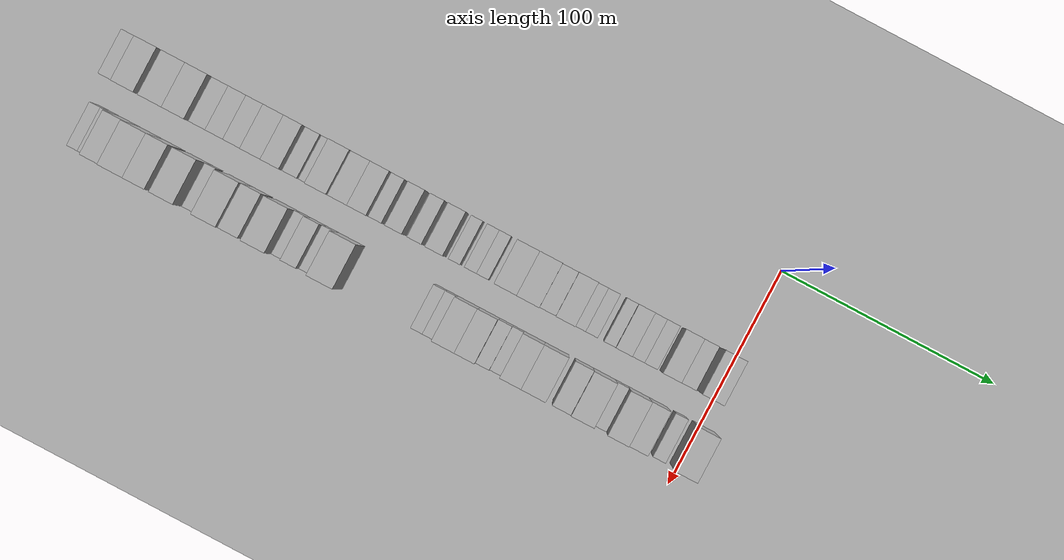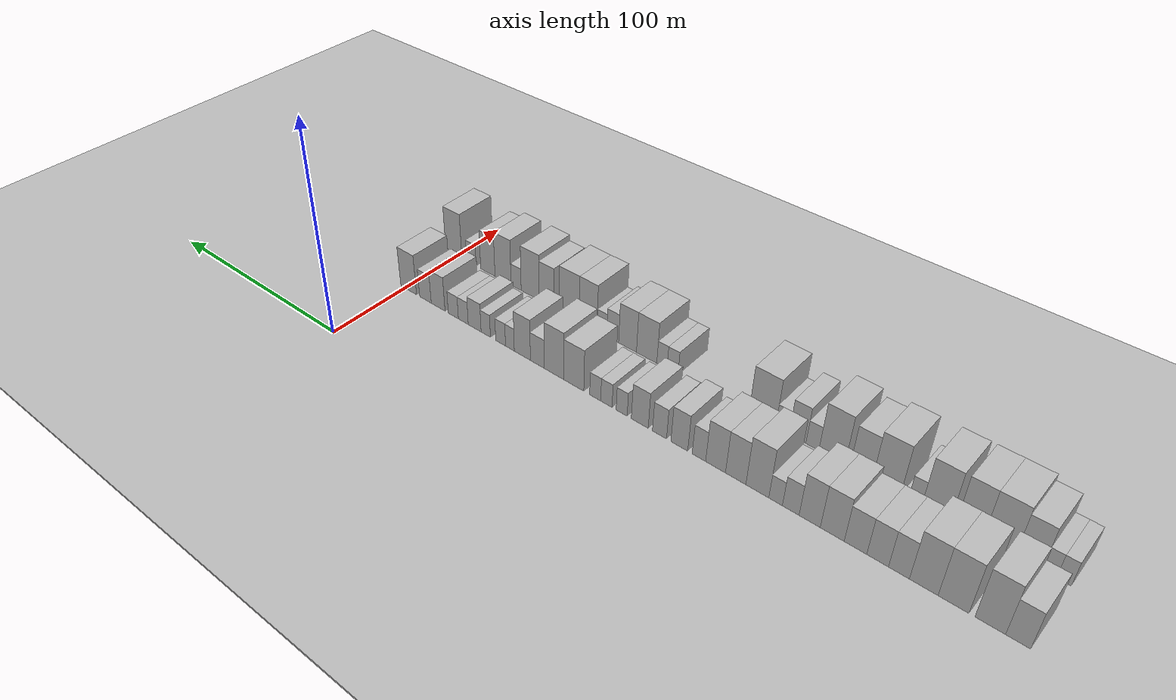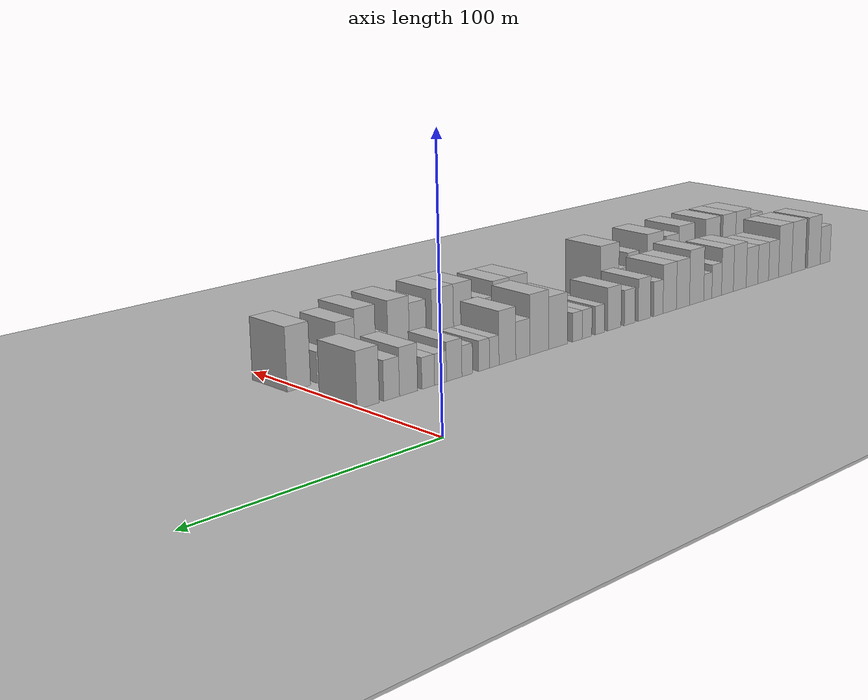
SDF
<sdf version="1.6">
 <world name="default">
  <include><name>ground_plane_1</name><uri>model://HANNAS_ground_plane</uri></include>
  <include>
   <name>ground_plane_2</name>
   <uri>model://HANNAS_ground_plane</uri>
   <pose>100 0 0  0 0 0</pose>
  </include>
  <model name="building_1">
   <static>1</static>
   <pose>50.0000 -277.9557 0 0.000000 0.000000 0.000000</pose>
   <link name="link">
    <pose>0 0 9.00 0 0 0</pose>
    <collision name="collision"><geometry><box><size>20.0000 8.0885 18.0000</size></box></geometry></collision>
    <visual name="visual">
     <cast_shadows>0</cast_shadows>
     <geometry><box><size>20.0000 8.0885 18.0000</size></box></geometry>
     <material>
      <script>
       <uri>model://HANNAS_wall/materials/scripts</uri>
       <uri>model://HANNAS_wall/materials/textures</uri>
       <name>vrc/HANNAS_wall</name>
      </script>
     </material>
    </visual>
   </link>
  </model>
  <model name="building_2">
   <static>1</static>
   <pose>50.0000 -268.8306 0 0.000000 0.000000 0.000000</pose>
   <link name="link">
    <pose>0 0 12.00 0 0 0</pose>
    <collision name="collision"><geometry><box><size>20.0000 10.1618 24.0000</size></box></geometry></collision>
    <visual name="visual">
     <cast_shadows>0</cast_shadows>
     <geometry><box><size>20.0000 10.1618 24.0000</size></box></geometry>
     <material>
      <script>
       <uri>model://HANNAS_wall/materials/scripts</uri>
       <uri>model://HANNAS_wall/materials/textures</uri>
       <name>vrc/HANNAS_wall</name>
      </script>
     </material>
    </visual>
   </link>
  </model>
  <model name="building_3">
   <static>1</static>
   <pose>50.0000 -256.4384 0 0.000000 0.000000 0.000000</pose>
   <link name="link">
    <pose>0 0 12.00 0 0 0</pose>
    <collision name="collision"><geometry><box><size>20.0000 10.6225 24.0000</size></box></geometry></collision>
    <visual name="visual">
     <cast_shadows>0</cast_shadows>
     <geometry><box><size>20.0000 10.6225 24.0000</size></box></geometry>
     <material>
      <script>
       <uri>model://HANNAS_wall/materials/scripts</uri>
       <uri>model://HANNAS_wall/materials/textures</uri>
       <name>vrc/HANNAS_wall</name>
      </script>
     </material>
    </visual>
   </link>
  </model>
  <model name="building_4">
   <static>1</static>
   <pose>50.0000 -246.0642 0 0.000000 0.000000 0.000000</pose>
   <link name="link">
    <pose>0 0 12.00 0 0 0</pose>
    <collision name="collision"><geometry><box><size>20.0000 10.1259 24.0000</size></box></geometry></collision>
    <visual name="visual">
     <cast_shadows>0</cast_shadows>
     <geometry><box><size>20.0000 10.1259 24.0000</size></box></geometry>
     <material>
      <script>
       <uri>model://HANNAS_wall/materials/scripts</uri>
       <uri>model://HANNAS_wall/materials/textures</uri>
       <name>vrc/HANNAS_wall</name>
      </script>
     </material>
    </visual>
   </link>
  </model>
  <model name="building_5">
   <static>1</static>
   <pose>50.0000 -237.2172 0 0.000000 0.000000 0.000000</pose>
   <link name="link">
    <pose>0 0 9.00 0 0 0</pose>
    <collision name="collision"><geometry><box><size>20.0000 7.5681 18.0000</size></box></geometry></collision>
    <visual name="visual">
     <cast_shadows>0</cast_shadows>
     <geometry><box><size>20.0000 7.5681 18.0000</size></box></geometry>
     <material>
      <script>
       <uri>model://HANNAS_wall/materials/scripts</uri>
       <uri>model://HANNAS_wall/materials/textures</uri>
       <name>vrc/HANNAS_wall</name>
      </script>
     </material>
    </visual>
   </link>
  </model>
  <model name="building_6">
   <static>1</static>
   <pose>50.0000 -229.4147 0 0.000000 0.000000 0.000000</pose>
   <link name="link">
    <pose>0 0 9.00 0 0 0</pose>
    <collision name="collision"><geometry><box><size>20.0000 8.0370 18.0000</size></box></geometry></collision>
    <visual name="visual">
     <cast_shadows>0</cast_shadows>
     <geometry><box><size>20.0000 8.0370 18.0000</size></box></geometry>
     <material>
      <script>
       <uri>model://HANNAS_wall/materials/scripts</uri>
       <uri>model://HANNAS_wall/materials/textures</uri>
       <name>vrc/HANNAS_wall</name>
      </script>
     </material>
    </visual>
   </link>
  </model>
  <model name="building_7">
   <static>1</static>
   <pose>50.0000 -221.1382 0 0.000000 0.000000 0.000000</pose>
   <link name="link">
    <pose>0 0 9.00 0 0 0</pose>
    <collision name="collision"><geometry><box><size>20.0000 8.5159 18.0000</size></box></geometry></collision>
    <visual name="visual">
     <cast_shadows>0</cast_shadows>
     <geometry><box><size>20.0000 8.5159 18.0000</size></box></geometry>
     <material>
      <script>
       <uri>model://HANNAS_wall/materials/scripts</uri>
       <uri>model://HANNAS_wall/materials/textures</uri>
       <name>vrc/HANNAS_wall</name>
      </script>
     </material>
    </visual>
   </link>
  </model>
  <model name="building_8">
   <static>1</static>
   <pose>50.0000 -212.2553 0 0.000000 0.000000 0.000000</pose>
   <link name="link">
    <pose>0 0 10.50 0 0 0</pose>
    <collision name="collision"><geometry><box><size>20.0000 9.2499 21.0000</size></box></geometry></collision>
    <visual name="visual">
     <cast_shadows>0</cast_shadows>
     <geometry><box><size>20.0000 9.2499 21.0000</size></box></geometry>
     <material>
      <script>
       <uri>model://HANNAS_wall/materials/scripts</uri>
       <uri>model://HANNAS_wall/materials/textures</uri>
       <name>vrc/HANNAS_wall</name>
      </script>
     </material>
    </visual>
   </link>
  </model>
  <model name="building_9">
   <static>1</static>
   <pose>50.0000 -203.4296 0 0.000000 0.000000 0.000000</pose>
   <link name="link">
    <pose>0 0 10.50 0 0 0</pose>
    <collision name="collision"><geometry><box><size>20.0000 8.4014 21.0000</size></box></geometry></collision>
    <visual name="visual">
     <cast_shadows>0</cast_shadows>
     <geometry><box><size>20.0000 8.4014 21.0000</size></box></geometry>
     <material>
      <script>
       <uri>model://HANNAS_wall/materials/scripts</uri>
       <uri>model://HANNAS_wall/materials/textures</uri>
       <name>vrc/HANNAS_wall</name>
      </script>
     </material>
    </visual>
   </link>
  </model>
  <model name="building_10">
   <static>1</static>
   <pose>50.0000 -195.8593 0 0.000000 0.000000 0.000000</pose>
   <link name="link">
    <pose>0 0 7.50 0 0 0</pose>
    <collision name="collision"><geometry><box><size>20.0000 6.7391 15.0000</size></box></geometry></collision>
    <visual name="visual">
     <cast_shadows>0</cast_shadows>
     <geometry><box><size>20.0000 6.7391 15.0000</size></box></geometry>
     <material>
      <script>
       <uri>model://HANNAS_wall/materials/scripts</uri>
       <uri>model://HANNAS_wall/materials/textures</uri>
       <name>vrc/HANNAS_wall</name>
      </script>
     </material>
    </visual>
   </link>
  </model>
  <model name="building_11">
   <static>1</static>
   <pose>50.0000 -189.7032 0 0.000000 0.000000 0.000000</pose>
   <link name="link">
    <pose>0 0 6.00 0 0 0</pose>
    <collision name="collision"><geometry><box><size>20.0000 5.5732 12.0000</size></box></geometry></collision>
    <visual name="visual">
     <cast_shadows>0</cast_shadows>
     <geometry><box><size>20.0000 5.5732 12.0000</size></box></geometry>
     <material>
      <script>
       <uri>model://HANNAS_wall/materials/scripts</uri>
       <uri>model://HANNAS_wall/materials/textures</uri>
       <name>vrc/HANNAS_wall</name>
      </script>
     </material>
    </visual>
   </link>
  </model>
  <model name="building_12">
   <static>1</static>
   <pose>50.0000 -182.1112 0 0.000000 0.000000 0.000000</pose>
   <link name="link">
    <pose>0 0 12.00 0 0 0</pose>
    <collision name="collision"><geometry><box><size>20.0000 9.6108 24.0000</size></box></geometry></collision>
    <visual name="visual">
     <cast_shadows>0</cast_shadows>
     <geometry><box><size>20.0000 9.6108 24.0000</size></box></geometry>
     <material>
      <script>
       <uri>model://HANNAS_wall/materials/scripts</uri>
       <uri>model://HANNAS_wall/materials/textures</uri>
       <name>vrc/HANNAS_wall</name>
      </script>
     </material>
    </visual>
   </link>
  </model>
  <model name="building_13">
   <static>1</static>
   <pose>50.0000 -172.9415 0 0.000000 0.000000 0.000000</pose>
   <link name="link">
    <pose>0 0 10.50 0 0 0</pose>
    <collision name="collision"><geometry><box><size>20.0000 8.7288 21.0000</size></box></geometry></collision>
    <visual name="visual">
     <cast_shadows>0</cast_shadows>
     <geometry><box><size>20.0000 8.7288 21.0000</size></box></geometry>
     <material>
      <script>
       <uri>model://HANNAS_wall/materials/scripts</uri>
       <uri>model://HANNAS_wall/materials/textures</uri>
       <name>vrc/HANNAS_wall</name>
      </script>
     </material>
    </visual>
   </link>
  </model>
  <model name="building_14">
   <static>1</static>
   <pose>50.0000 -164.2269 0 0.000000 0.000000 0.000000</pose>
   <link name="link">
    <pose>0 0 10.50 0 0 0</pose>
    <collision name="collision"><geometry><box><size>20.0000 8.7003 21.0000</size></box></geometry></collision>
    <visual name="visual">
     <cast_shadows>0</cast_shadows>
     <geometry><box><size>20.0000 8.7003 21.0000</size></box></geometry>
     <material>
      <script>
       <uri>model://HANNAS_wall/materials/scripts</uri>
       <uri>model://HANNAS_wall/materials/textures</uri>
       <name>vrc/HANNAS_wall</name>
      </script>
     </material>
    </visual>
   </link>
  </model>
  <model name="building_15">
   <static>1</static>
   <pose>50.0000 -156.8764 0 0.000000 0.000000 0.000000</pose>
   <link name="link">
    <pose>0 0 7.50 0 0 0</pose>
    <collision name="collision"><geometry><box><size>20.0000 6.0009 15.0000</size></box></geometry></collision>
    <visual name="visual">
     <cast_shadows>0</cast_shadows>
     <geometry><box><size>20.0000 6.0009 15.0000</size></box></geometry>
     <material>
      <script>
       <uri>model://HANNAS_wall/materials/scripts</uri>
       <uri>model://HANNAS_wall/materials/textures</uri>
       <name>vrc/HANNAS_wall</name>
      </script>
     </material>
    </visual>
   </link>
  </model>
  <model name="building_16">
   <static>1</static>
   <pose>50.0000 -148.0398 0 0.000000 0.000000 0.000000</pose>
   <link name="link">
    <pose>0 0 9.00 0 0 0</pose>
    <collision name="collision"><geometry><box><size>20.0000 7.6723 18.0000</size></box></geometry></collision>
    <visual name="visual">
     <cast_shadows>0</cast_shadows>
     <geometry><box><size>20.0000 7.6723 18.0000</size></box></geometry>
     <material>
      <script>
       <uri>model://HANNAS_wall/materials/scripts</uri>
       <uri>model://HANNAS_wall/materials/textures</uri>
       <name>vrc/HANNAS_wall</name>
      </script>
     </material>
    </visual>
   </link>
  </model>
  <model name="building_17">
   <static>1</static>
   <pose>50.0000 -138.9311 0 0.000000 0.000000 0.000000</pose>
   <link name="link">
    <pose>0 0 7.50 0 0 0</pose>
    <collision name="collision"><geometry><box><size>20.0000 6.5452 15.0000</size></box></geometry></collision>
    <visual name="visual">
     <cast_shadows>0</cast_shadows>
     <geometry><box><size>20.0000 6.5452 15.0000</size></box></geometry>
     <material>
      <script>
       <uri>model://HANNAS_wall/materials/scripts</uri>
       <uri>model://HANNAS_wall/materials/textures</uri>
       <name>vrc/HANNAS_wall</name>
      </script>
     </material>
    </visual>
   </link>
  </model>
  <model name="building_18">
   <static>1</static>
   <pose>50.0000 -129.6286 0 0.000000 0.000000 0.000000</pose>
   <link name="link">
    <pose>0 0 9.00 0 0 0</pose>
    <collision name="collision"><geometry><box><size>20.0000 8.0599 18.0000</size></box></geometry></collision>
    <visual name="visual">
     <cast_shadows>0</cast_shadows>
     <geometry><box><size>20.0000 8.0599 18.0000</size></box></geometry>
     <material>
      <script>
       <uri>model://HANNAS_wall/materials/scripts</uri>
       <uri>model://HANNAS_wall/materials/textures</uri>
       <name>vrc/HANNAS_wall</name>
      </script>
     </material>
    </visual>
   </link>
  </model>
  <model name="building_19">
   <static>1</static>
   <pose>50.0000 -120.9239 0 0.000000 0.000000 0.000000</pose>
   <link name="link">
    <pose>0 0 6.00 0 0 0</pose>
    <collision name="collision"><geometry><box><size>20.0000 5.3495 12.0000</size></box></geometry></collision>
    <visual name="visual">
     <cast_shadows>0</cast_shadows>
     <geometry><box><size>20.0000 5.3495 12.0000</size></box></geometry>
     <material>
      <script>
       <uri>model://HANNAS_wall/materials/scripts</uri>
       <uri>model://HANNAS_wall/materials/textures</uri>
       <name>vrc/HANNAS_wall</name>
      </script>
     </material>
    </visual>
   </link>
  </model>
  <model name="building_20">
   <static>1</static>
   <pose>50.0000 -113.4339 0 0.000000 0.000000 0.000000</pose>
   <link name="link">
    <pose>0 0 6.00 0 0 0</pose>
    <collision name="collision"><geometry><box><size>20.0000 5.6305 12.0000</size></box></geometry></collision>
    <visual name="visual">
     <cast_shadows>0</cast_shadows>
     <geometry><box><size>20.0000 5.6305 12.0000</size></box></geometry>
     <material>
      <script>
       <uri>model://HANNAS_wall/materials/scripts</uri>
       <uri>model://HANNAS_wall/materials/textures</uri>
       <name>vrc/HANNAS_wall</name>
      </script>
     </material>
    </visual>
   </link>
  </model>
  <model name="building_21">
   <static>1</static>
   <pose>50.0000 -107.8615 0 0.000000 0.000000 0.000000</pose>
   <link name="link">
    <pose>0 0 6.00 0 0 0</pose>
    <collision name="collision"><geometry><box><size>20.0000 5.5142 12.0000</size></box></geometry></collision>
    <visual name="visual">
     <cast_shadows>0</cast_shadows>
     <geometry><box><size>20.0000 5.5142 12.0000</size></box></geometry>
     <material>
      <script>
       <uri>model://HANNAS_wall/materials/scripts</uri>
       <uri>model://HANNAS_wall/materials/textures</uri>
       <name>vrc/HANNAS_wall</name>
      </script>
     </material>
    </visual>
   </link>
  </model>
  <model name="building_22">
   <static>1</static>
   <pose>50.0000 -96.9569 0 0.000000 0.000000 0.000000</pose>
   <link name="link">
    <pose>0 0 10.50 0 0 0</pose>
    <collision name="collision"><geometry><box><size>20.0000 10.2951 21.0000</size></box></geometry></collision>
    <visual name="visual">
     <cast_shadows>0</cast_shadows>
     <geometry><box><size>20.0000 10.2951 21.0000</size></box></geometry>
     <material>
      <script>
       <uri>model://HANNAS_wall/materials/scripts</uri>
       <uri>model://HANNAS_wall/materials/textures</uri>
       <name>vrc/HANNAS_wall</name>
      </script>
     </material>
    </visual>
   </link>
  </model>
  <model name="building_23">
   <static>1</static>
   <pose>50.0000 -86.6608 0 0.000000 0.000000 0.000000</pose>
   <link name="link">
    <pose>0 0 12.00 0 0 0</pose>
    <collision name="collision"><geometry><box><size>20.0000 10.2970 24.0000</size></box></geometry></collision>
    <visual name="visual">
     <cast_shadows>0</cast_shadows>
     <geometry><box><size>20.0000 10.2970 24.0000</size></box></geometry>
     <material>
      <script>
       <uri>model://HANNAS_wall/materials/scripts</uri>
       <uri>model://HANNAS_wall/materials/textures</uri>
       <name>vrc/HANNAS_wall</name>
      </script>
     </material>
    </visual>
   </link>
  </model>
  <model name="building_24">
   <static>1</static>
   <pose>50.0000 -77.8001 0 0.000000 0.000000 0.000000</pose>
   <link name="link">
    <pose>0 0 7.50 0 0 0</pose>
    <collision name="collision"><geometry><box><size>20.0000 7.4245 15.0000</size></box></geometry></collision>
    <visual name="visual">
     <cast_shadows>0</cast_shadows>
     <geometry><box><size>20.0000 7.4245 15.0000</size></box></geometry>
     <material>
      <script>
       <uri>model://HANNAS_wall/materials/scripts</uri>
       <uri>model://HANNAS_wall/materials/textures</uri>
       <name>vrc/HANNAS_wall</name>
      </script>
     </material>
    </visual>
   </link>
  </model>
  <model name="building_25">
   <static>1</static>
   <pose>50.0000 -69.6956 0 0.000000 0.000000 0.000000</pose>
   <link name="link">
    <pose>0 0 10.50 0 0 0</pose>
    <collision name="collision"><geometry><box><size>20.0000 8.7845 21.0000</size></box></geometry></collision>
    <visual name="visual">
     <cast_shadows>0</cast_shadows>
     <geometry><box><size>20.0000 8.7845 21.0000</size></box></geometry>
     <material>
      <script>
       <uri>model://HANNAS_wall/materials/scripts</uri>
       <uri>model://HANNAS_wall/materials/textures</uri>
       <name>vrc/HANNAS_wall</name>
      </script>
     </material>
    </visual>
   </link>
  </model>
  <model name="building_26">
   <static>1</static>
   <pose>50.0000 -62.8585 0 0.000000 0.000000 0.000000</pose>
   <link name="link">
    <pose>0 0 6.00 0 0 0</pose>
    <collision name="collision"><geometry><box><size>20.0000 4.8897 12.0000</size></box></geometry></collision>
    <visual name="visual">
     <cast_shadows>0</cast_shadows>
     <geometry><box><size>20.0000 4.8897 12.0000</size></box></geometry>
     <material>
      <script>
       <uri>model://HANNAS_wall/materials/scripts</uri>
       <uri>model://HANNAS_wall/materials/textures</uri>
       <name>vrc/HANNAS_wall</name>
      </script>
     </material>
    </visual>
   </link>
  </model>
  <model name="building_27">
   <static>1</static>
   <pose>50.0000 -57.6630 0 0.000000 0.000000 0.000000</pose>
   <link name="link">
    <pose>0 0 6.00 0 0 0</pose>
    <collision name="collision"><geometry><box><size>20.0000 5.5013 12.0000</size></box></geometry></collision>
    <visual name="visual">
     <cast_shadows>0</cast_shadows>
     <geometry><box><size>20.0000 5.5013 12.0000</size></box></geometry>
     <material>
      <script>
       <uri>model://HANNAS_wall/materials/scripts</uri>
       <uri>model://HANNAS_wall/materials/textures</uri>
       <name>vrc/HANNAS_wall</name>
      </script>
     </material>
    </visual>
   </link>
  </model>
  <model name="building_28">
   <static>1</static>
   <pose>50.0000 -49.2499 0 0.000000 0.000000 0.000000</pose>
   <link name="link">
    <pose>0 0 6.00 0 0 0</pose>
    <collision name="collision"><geometry><box><size>20.0000 5.3249 12.0000</size></box></geometry></collision>
    <visual name="visual">
     <cast_shadows>0</cast_shadows>
     <geometry><box><size>20.0000 5.3249 12.0000</size></box></geometry>
     <material>
      <script>
       <uri>model://HANNAS_wall/materials/scripts</uri>
       <uri>model://HANNAS_wall/materials/textures</uri>
       <name>vrc/HANNAS_wall</name>
      </script>
     </material>
    </visual>
   </link>
  </model>
  <model name="building_29">
   <static>1</static>
   <pose>50.0000 -42.8600 0 0.000000 0.000000 0.000000</pose>
   <link name="link">
    <pose>0 0 7.50 0 0 0</pose>
    <collision name="collision"><geometry><box><size>20.0000 7.4549 15.0000</size></box></geometry></collision>
    <visual name="visual">
     <cast_shadows>0</cast_shadows>
     <geometry><box><size>20.0000 7.4549 15.0000</size></box></geometry>
     <material>
      <script>
       <uri>model://HANNAS_wall/materials/scripts</uri>
       <uri>model://HANNAS_wall/materials/textures</uri>
       <name>vrc/HANNAS_wall</name>
      </script>
     </material>
    </visual>
   </link>
  </model>
  <model name="building_30">
   <static>1</static>
   <pose>50.0000 -36.2315 0 0.000000 0.000000 0.000000</pose>
   <link name="link">
    <pose>0 0 6.00 0 0 0</pose>
    <collision name="collision"><geometry><box><size>20.0000 5.8020 12.0000</size></box></geometry></collision>
    <visual name="visual">
     <cast_shadows>0</cast_shadows>
     <geometry><box><size>20.0000 5.8020 12.0000</size></box></geometry>
     <material>
      <script>
       <uri>model://HANNAS_wall/materials/scripts</uri>
       <uri>model://HANNAS_wall/materials/textures</uri>
       <name>vrc/HANNAS_wall</name>
      </script>
     </material>
    </visual>
   </link>
  </model>
  <model name="building_31">
   <static>1</static>
   <pose>50.0000 -30.3427 0 0.000000 0.000000 0.000000</pose>
   <link name="link">
    <pose>0 0 6.00 0 0 0</pose>
    <collision name="collision"><geometry><box><size>20.0000 5.9757 12.0000</size></box></geometry></collision>
    <visual name="visual">
     <cast_shadows>0</cast_shadows>
     <geometry><box><size>20.0000 5.9757 12.0000</size></box></geometry>
     <material>
      <script>
       <uri>model://HANNAS_wall/materials/scripts</uri>
       <uri>model://HANNAS_wall/materials/textures</uri>
       <name>vrc/HANNAS_wall</name>
      </script>
     </material>
    </visual>
   </link>
  </model>
  <model name="building_32">
   <static>1</static>
   <pose>50.0000 -21.1666 0 0.000000 0.000000 0.000000</pose>
   <link name="link">
    <pose>0 0 9.00 0 0 0</pose>
    <collision name="collision"><geometry><box><size>20.0000 8.3766 18.0000</size></box></geometry></collision>
    <visual name="visual">
     <cast_shadows>0</cast_shadows>
     <geometry><box><size>20.0000 8.3766 18.0000</size></box></geometry>
     <material>
      <script>
       <uri>model://HANNAS_wall/materials/scripts</uri>
       <uri>model://HANNAS_wall/materials/textures</uri>
       <name>vrc/HANNAS_wall</name>
      </script>
     </material>
    </visual>
   </link>
  </model>
  <model name="building_33">
   <static>1</static>
   <pose>50.0000 -13.4240 0 0.000000 0.000000 0.000000</pose>
   <link name="link">
    <pose>0 0 7.50 0 0 0</pose>
    <collision name="collision"><geometry><box><size>20.0000 7.1086 15.0000</size></box></geometry></collision>
    <visual name="visual">
     <cast_shadows>0</cast_shadows>
     <geometry><box><size>20.0000 7.1086 15.0000</size></box></geometry>
     <material>
      <script>
       <uri>model://HANNAS_wall/materials/scripts</uri>
       <uri>model://HANNAS_wall/materials/textures</uri>
       <name>vrc/HANNAS_wall</name>
      </script>
     </material>
    </visual>
   </link>
  </model>
  <model name="building_34">
   <static>1</static>
   <pose>50.0000 -2.9296 0 0.000000 0.000000 0.000000</pose>
   <link name="link">
    <pose>0 0 10.50 0 0 0</pose>
    <collision name="collision"><geometry><box><size>20.0000 9.8801 21.0000</size></box></geometry></collision>
    <visual name="visual">
     <cast_shadows>0</cast_shadows>
     <geometry><box><size>20.0000 9.8801 21.0000</size></box></geometry>
     <material>
      <script>
       <uri>model://HANNAS_wall/materials/scripts</uri>
       <uri>model://HANNAS_wall/materials/textures</uri>
       <name>vrc/HANNAS_wall</name>
      </script>
     </material>
    </visual>
   </link>
  </model>
  <model name="building_67">
   <static>1</static>
   <pose>82.0000 -279.5148 0 0.000000 0.000000 0.000000</pose>
   <link name="link">
    <pose>0 0 6.00 0 0 0</pose>
    <collision name="collision"><geometry><box><size>20.0000 4.9703 12.0000</size></box></geometry></collision>
    <visual name="visual">
     <cast_shadows>0</cast_shadows>
     <geometry><box><size>20.0000 4.9703 12.0000</size></box></geometry>
     <material>
      <script>
       <uri>model://HANNAS_wall/materials/scripts</uri>
       <uri>model://HANNAS_wall/materials/textures</uri>
       <name>vrc/HANNAS_wall</name>
      </script>
     </material>
    </visual>
   </link>
  </model>
  <model name="building_68">
   <static>1</static>
   <pose>82.0000 -274.6167 0 0.000000 0.000000 0.000000</pose>
   <link name="link">
    <pose>0 0 6.00 0 0 0</pose>
    <collision name="collision"><geometry><box><size>20.0000 4.8260 12.0000</size></box></geometry></collision>
    <visual name="visual">
     <cast_shadows>0</cast_shadows>
     <geometry><box><size>20.0000 4.8260 12.0000</size></box></geometry>
     <material>
      <script>
       <uri>model://HANNAS_wall/materials/scripts</uri>
       <uri>model://HANNAS_wall/materials/textures</uri>
       <name>vrc/HANNAS_wall</name>
      </script>
     </material>
    </visual>
   </link>
  </model>
  <model name="building_69">
   <static>1</static>
   <pose>82.0000 -267.6042 0 0.000000 0.000000 0.000000</pose>
   <link name="link">
    <pose>0 0 10.50 0 0 0</pose>
    <collision name="collision"><geometry><box><size>20.0000 9.1989 21.0000</size></box></geometry></collision>
    <visual name="visual">
     <cast_shadows>0</cast_shadows>
     <geometry><box><size>20.0000 9.1989 21.0000</size></box></geometry>
     <material>
      <script>
       <uri>model://HANNAS_wall/materials/scripts</uri>
       <uri>model://HANNAS_wall/materials/textures</uri>
       <name>vrc/HANNAS_wall</name>
      </script>
     </material>
    </visual>
   </link>
  </model>
  <model name="building_70">
   <static>1</static>
   <pose>82.0000 -257.3547 0 0.000000 0.000000 0.000000</pose>
   <link name="link">
    <pose>0 0 12.00 0 0 0</pose>
    <collision name="collision"><geometry><box><size>20.0000 11.3002 24.0000</size></box></geometry></collision>
    <visual name="visual">
     <cast_shadows>0</cast_shadows>
     <geometry><box><size>20.0000 11.3002 24.0000</size></box></geometry>
     <material>
      <script>
       <uri>model://HANNAS_wall/materials/scripts</uri>
       <uri>model://HANNAS_wall/materials/textures</uri>
       <name>vrc/HANNAS_wall</name>
      </script>
     </material>
    </visual>
   </link>
  </model>
  <model name="building_71">
   <static>1</static>
   <pose>82.0000 -246.7453 0 0.000000 0.000000 0.000000</pose>
   <link name="link">
    <pose>0 0 12.00 0 0 0</pose>
    <collision name="collision"><geometry><box><size>20.0000 9.9187 24.0000</size></box></geometry></collision>
    <visual name="visual">
     <cast_shadows>0</cast_shadows>
     <geometry><box><size>20.0000 9.9187 24.0000</size></box></geometry>
     <material>
      <script>
       <uri>model://HANNAS_wall/materials/scripts</uri>
       <uri>model://HANNAS_wall/materials/textures</uri>
       <name>vrc/HANNAS_wall</name>
      </script>
     </material>
    </visual>
   </link>
  </model>
  <model name="building_72">
   <static>1</static>
   <pose>82.0000 -234.4169 0 0.000000 0.000000 0.000000</pose>
   <link name="link">
    <pose>0 0 12.00 0 0 0</pose>
    <collision name="collision"><geometry><box><size>20.0000 10.7382 24.0000</size></box></geometry></collision>
    <visual name="visual">
     <cast_shadows>0</cast_shadows>
     <geometry><box><size>20.0000 10.7382 24.0000</size></box></geometry>
     <material>
      <script>
       <uri>model://HANNAS_wall/materials/scripts</uri>
       <uri>model://HANNAS_wall/materials/textures</uri>
       <name>vrc/HANNAS_wall</name>
      </script>
     </material>
    </visual>
   </link>
  </model>
  <model name="building_73">
   <static>1</static>
   <pose>82.0000 -226.5316 0 0.000000 0.000000 0.000000</pose>
   <link name="link">
    <pose>0 0 6.00 0 0 0</pose>
    <collision name="collision"><geometry><box><size>20.0000 5.0325 12.0000</size></box></geometry></collision>
    <visual name="visual">
     <cast_shadows>0</cast_shadows>
     <geometry><box><size>20.0000 5.0325 12.0000</size></box></geometry>
     <material>
      <script>
       <uri>model://HANNAS_wall/materials/scripts</uri>
       <uri>model://HANNAS_wall/materials/textures</uri>
       <name>vrc/HANNAS_wall</name>
      </script>
     </material>
    </visual>
   </link>
  </model>
  <model name="building_74">
   <static>1</static>
   <pose>82.0000 -215.4455 0 0.000000 0.000000 0.000000</pose>
   <link name="link">
    <pose>0 0 12.00 0 0 0</pose>
    <collision name="collision"><geometry><box><size>20.0000 11.1396 24.0000</size></box></geometry></collision>
    <visual name="visual">
     <cast_shadows>0</cast_shadows>
     <geometry><box><size>20.0000 11.1396 24.0000</size></box></geometry>
     <material>
      <script>
       <uri>model://HANNAS_wall/materials/scripts</uri>
       <uri>model://HANNAS_wall/materials/textures</uri>
       <name>vrc/HANNAS_wall</name>
      </script>
     </material>
    </visual>
   </link>
  </model>
  <model name="building_75">
   <static>1</static>
   <pose>82.0000 -205.3214 0 0.000000 0.000000 0.000000</pose>
   <link name="link">
    <pose>0 0 10.50 0 0 0</pose>
    <collision name="collision"><geometry><box><size>20.0000 9.1087 21.0000</size></box></geometry></collision>
    <visual name="visual">
     <cast_shadows>0</cast_shadows>
     <geometry><box><size>20.0000 9.1087 21.0000</size></box></geometry>
     <material>
      <script>
       <uri>model://HANNAS_wall/materials/scripts</uri>
       <uri>model://HANNAS_wall/materials/textures</uri>
       <name>vrc/HANNAS_wall</name>
      </script>
     </material>
    </visual>
   </link>
  </model>
  <model name="building_76">
   <static>1</static>
   <pose>82.0000 -193.3516 0 0.000000 0.000000 0.000000</pose>
   <link name="link">
    <pose>0 0 12.00 0 0 0</pose>
    <collision name="collision"><geometry><box><size>20.0000 10.8309 24.0000</size></box></geometry></collision>
    <visual name="visual">
     <cast_shadows>0</cast_shadows>
     <geometry><box><size>20.0000 10.8309 24.0000</size></box></geometry>
     <material>
      <script>
       <uri>model://HANNAS_wall/materials/scripts</uri>
       <uri>model://HANNAS_wall/materials/textures</uri>
       <name>vrc/HANNAS_wall</name>
      </script>
     </material>
    </visual>
   </link>
  </model>
  <model name="building_77">
   <static>1</static>
   <pose>82.0000 -185.1892 0 0.000000 0.000000 0.000000</pose>
   <link name="link">
    <pose>0 0 6.00 0 0 0</pose>
    <collision name="collision"><geometry><box><size>20.0000 5.4939 12.0000</size></box></geometry></collision>
    <visual name="visual">
     <cast_shadows>0</cast_shadows>
     <geometry><box><size>20.0000 5.4939 12.0000</size></box></geometry>
     <material>
      <script>
       <uri>model://HANNAS_wall/materials/scripts</uri>
       <uri>model://HANNAS_wall/materials/textures</uri>
       <name>vrc/HANNAS_wall</name>
      </script>
     </material>
    </visual>
   </link>
  </model>
  <model name="building_78">
   <static>1</static>
   <pose>82.0000 -178.8190 0 0.000000 0.000000 0.000000</pose>
   <link name="link">
    <pose>0 0 9.00 0 0 0</pose>
    <collision name="collision"><geometry><box><size>20.0000 7.2463 18.0000</size></box></geometry></collision>
    <visual name="visual">
     <cast_shadows>0</cast_shadows>
     <geometry><box><size>20.0000 7.2463 18.0000</size></box></geometry>
     <material>
      <script>
       <uri>model://HANNAS_wall/materials/scripts</uri>
       <uri>model://HANNAS_wall/materials/textures</uri>
       <name>vrc/HANNAS_wall</name>
      </script>
     </material>
    </visual>
   </link>
  </model>
  <model name="building_79">
   <static>1</static>
   <pose>82.0000 -172.2559 0 0.000000 0.000000 0.000000</pose>
   <link name="link">
    <pose>0 0 6.00 0 0 0</pose>
    <collision name="collision"><geometry><box><size>20.0000 5.8800 12.0000</size></box></geometry></collision>
    <visual name="visual">
     <cast_shadows>0</cast_shadows>
     <geometry><box><size>20.0000 5.8800 12.0000</size></box></geometry>
     <material>
      <script>
       <uri>model://HANNAS_wall/materials/scripts</uri>
       <uri>model://HANNAS_wall/materials/textures</uri>
       <name>vrc/HANNAS_wall</name>
      </script>
     </material>
    </visual>
   </link>
  </model>
  <model name="building_80">
   <static>1</static>
   <pose>82.0000 -163.3677 0 0.000000 0.000000 0.000000</pose>
   <link name="link">
    <pose>0 0 12.00 0 0 0</pose>
    <collision name="collision"><geometry><box><size>20.0000 11.8963 24.0000</size></box></geometry></collision>
    <visual name="visual">
     <cast_shadows>0</cast_shadows>
     <geometry><box><size>20.0000 11.8963 24.0000</size></box></geometry>
     <material>
      <script>
       <uri>model://HANNAS_wall/materials/scripts</uri>
       <uri>model://HANNAS_wall/materials/textures</uri>
       <name>vrc/HANNAS_wall</name>
      </script>
     </material>
    </visual>
   </link>
  </model>
  <model name="building_81">
   <static>1</static>
   <pose>82.0000 -121.2935 0 0.000000 0.000000 0.000000</pose>
   <link name="link">
    <pose>0 0 6.00 0 0 0</pose>
    <collision name="collision"><geometry><box><size>20.0000 5.4174 12.0000</size></box></geometry></collision>
    <visual name="visual">
     <cast_shadows>0</cast_shadows>
     <geometry><box><size>20.0000 5.4174 12.0000</size></box></geometry>
     <material>
      <script>
       <uri>model://HANNAS_wall/materials/scripts</uri>
       <uri>model://HANNAS_wall/materials/textures</uri>
       <name>vrc/HANNAS_wall</name>
      </script>
     </material>
    </visual>
   </link>
  </model>
  <model name="building_82">
   <static>1</static>
   <pose>82.0000 -116.0348 0 0.000000 0.000000 0.000000</pose>
   <link name="link">
    <pose>0 0 6.00 0 0 0</pose>
    <collision name="collision"><geometry><box><size>20.0000 5.1000 12.0000</size></box></geometry></collision>
    <visual name="visual">
     <cast_shadows>0</cast_shadows>
     <geometry><box><size>20.0000 5.1000 12.0000</size></box></geometry>
     <material>
      <script>
       <uri>model://HANNAS_wall/materials/scripts</uri>
       <uri>model://HANNAS_wall/materials/textures</uri>
       <name>vrc/HANNAS_wall</name>
      </script>
     </material>
    </visual>
   </link>
  </model>
  <model name="building_83">
   <static>1</static>
   <pose>82.0000 -108.3214 0 0.000000 0.000000 0.000000</pose>
   <link name="link">
    <pose>0 0 10.50 0 0 0</pose>
    <collision name="collision"><geometry><box><size>20.0000 10.3269 21.0000</size></box></geometry></collision>
    <visual name="visual">
     <cast_shadows>0</cast_shadows>
     <geometry><box><size>20.0000 10.3269 21.0000</size></box></geometry>
     <material>
      <script>
       <uri>model://HANNAS_wall/materials/scripts</uri>
       <uri>model://HANNAS_wall/materials/textures</uri>
       <name>vrc/HANNAS_wall</name>
      </script>
     </material>
    </visual>
   </link>
  </model>
  <model name="building_84">
   <static>1</static>
   <pose>82.0000 -98.5267 0 0.000000 0.000000 0.000000</pose>
   <link name="link">
    <pose>0 0 10.50 0 0 0</pose>
    <collision name="collision"><geometry><box><size>20.0000 9.2625 21.0000</size></box></geometry></collision>
    <visual name="visual">
     <cast_shadows>0</cast_shadows>
     <geometry><box><size>20.0000 9.2625 21.0000</size></box></geometry>
     <material>
      <script>
       <uri>model://HANNAS_wall/materials/scripts</uri>
       <uri>model://HANNAS_wall/materials/textures</uri>
       <name>vrc/HANNAS_wall</name>
      </script>
     </material>
    </visual>
   </link>
  </model>
  <model name="building_85">
   <static>1</static>
   <pose>82.0000 -90.7465 0 0.000000 0.000000 0.000000</pose>
   <link name="link">
    <pose>0 0 7.50 0 0 0</pose>
    <collision name="collision"><geometry><box><size>20.0000 6.2978 15.0000</size></box></geometry></collision>
    <visual name="visual">
     <cast_shadows>0</cast_shadows>
     <geometry><box><size>20.0000 6.2978 15.0000</size></box></geometry>
     <material>
      <script>
       <uri>model://HANNAS_wall/materials/scripts</uri>
       <uri>model://HANNAS_wall/materials/textures</uri>
       <name>vrc/HANNAS_wall</name>
      </script>
     </material>
    </visual>
   </link>
  </model>
  <model name="building_86">
   <static>1</static>
   <pose>82.0000 -85.0205 0 0.000000 0.000000 0.000000</pose>
   <link name="link">
    <pose>0 0 6.00 0 0 0</pose>
    <collision name="collision"><geometry><box><size>20.0000 5.1543 12.0000</size></box></geometry></collision>
    <visual name="visual">
     <cast_shadows>0</cast_shadows>
     <geometry><box><size>20.0000 5.1543 12.0000</size></box></geometry>
     <material>
      <script>
       <uri>model://HANNAS_wall/materials/scripts</uri>
       <uri>model://HANNAS_wall/materials/textures</uri>
       <name>vrc/HANNAS_wall</name>
      </script>
     </material>
    </visual>
   </link>
  </model>
  <model name="building_87">
   <static>1</static>
   <pose>82.0000 -77.6204 0 0.000000 0.000000 0.000000</pose>
   <link name="link">
    <pose>0 0 12.00 0 0 0</pose>
    <collision name="collision"><geometry><box><size>20.0000 9.6459 24.0000</size></box></geometry></collision>
    <visual name="visual">
     <cast_shadows>0</cast_shadows>
     <geometry><box><size>20.0000 9.6459 24.0000</size></box></geometry>
     <material>
      <script>
       <uri>model://HANNAS_wall/materials/scripts</uri>
       <uri>model://HANNAS_wall/materials/textures</uri>
       <name>vrc/HANNAS_wall</name>
      </script>
     </material>
    </visual>
   </link>
  </model>
  <model name="building_88">
   <static>1</static>
   <pose>82.0000 -67.2510 0 0.000000 0.000000 0.000000</pose>
   <link name="link">
    <pose>0 0 12.00 0 0 0</pose>
    <collision name="collision"><geometry><box><size>20.0000 11.0929 24.0000</size></box></geometry></collision>
    <visual name="visual">
     <cast_shadows>0</cast_shadows>
     <geometry><box><size>20.0000 11.0929 24.0000</size></box></geometry>
     <material>
      <script>
       <uri>model://HANNAS_wall/materials/scripts</uri>
       <uri>model://HANNAS_wall/materials/textures</uri>
       <name>vrc/HANNAS_wall</name>
      </script>
     </material>
    </visual>
   </link>
  </model>
  <model name="building_89">
   <static>1</static>
   <pose>82.0000 -54.4961 0 0.000000 0.000000 0.000000</pose>
   <link name="link">
    <pose>0 0 10.50 0 0 0</pose>
    <collision name="collision"><geometry><box><size>20.0000 8.4169 21.0000</size></box></geometry></collision>
    <visual name="visual">
     <cast_shadows>0</cast_shadows>
     <geometry><box><size>20.0000 8.4169 21.0000</size></box></geometry>
     <material>
      <script>
       <uri>model://HANNAS_wall/materials/scripts</uri>
       <uri>model://HANNAS_wall/materials/textures</uri>
       <name>vrc/HANNAS_wall</name>
      </script>
     </material>
    </visual>
   </link>
  </model>
  <model name="building_90">
   <static>1</static>
   <pose>82.0000 -45.0684 0 0.000000 0.000000 0.000000</pose>
   <link name="link">
    <pose>0 0 12.00 0 0 0</pose>
    <collision name="collision"><geometry><box><size>20.0000 10.4384 24.0000</size></box></geometry></collision>
    <visual name="visual">
     <cast_shadows>0</cast_shadows>
     <geometry><box><size>20.0000 10.4384 24.0000</size></box></geometry>
     <material>
      <script>
       <uri>model://HANNAS_wall/materials/scripts</uri>
       <uri>model://HANNAS_wall/materials/textures</uri>
       <name>vrc/HANNAS_wall</name>
      </script>
     </material>
    </visual>
   </link>
  </model>
  <model name="building_91">
   <static>1</static>
   <pose>82.0000 -36.8566 0 0.000000 0.000000 0.000000</pose>
   <link name="link">
    <pose>0 0 6.00 0 0 0</pose>
    <collision name="collision"><geometry><box><size>20.0000 5.9854 12.0000</size></box></geometry></collision>
    <visual name="visual">
     <cast_shadows>0</cast_shadows>
     <geometry><box><size>20.0000 5.9854 12.0000</size></box></geometry>
     <material>
      <script>
       <uri>model://HANNAS_wall/materials/scripts</uri>
       <uri>model://HANNAS_wall/materials/textures</uri>
       <name>vrc/HANNAS_wall</name>
      </script>
     </material>
    </visual>
   </link>
  </model>
  <model name="building_92">
   <static>1</static>
   <pose>82.0000 -29.0393 0 0.000000 0.000000 0.000000</pose>
   <link name="link">
    <pose>0 0 12.00 0 0 0</pose>
    <collision name="collision"><geometry><box><size>20.0000 9.6492 24.0000</size></box></geometry></collision>
    <visual name="visual">
     <cast_shadows>0</cast_shadows>
     <geometry><box><size>20.0000 9.6492 24.0000</size></box></geometry>
     <material>
      <script>
       <uri>model://HANNAS_wall/materials/scripts</uri>
       <uri>model://HANNAS_wall/materials/textures</uri>
       <name>vrc/HANNAS_wall</name>
      </script>
     </material>
    </visual>
   </link>
  </model>
  <model name="building_93">
   <static>1</static>
   <pose>82.0000 -19.8543 0 0.000000 0.000000 0.000000</pose>
   <link name="link">
    <pose>0 0 10.50 0 0 0</pose>
    <collision name="collision"><geometry><box><size>20.0000 8.7208 21.0000</size></box></geometry></collision>
    <visual name="visual">
     <cast_shadows>0</cast_shadows>
     <geometry><box><size>20.0000 8.7208 21.0000</size></box></geometry>
     <material>
      <script>
       <uri>model://HANNAS_wall/materials/scripts</uri>
       <uri>model://HANNAS_wall/materials/textures</uri>
       <name>vrc/HANNAS_wall</name>
      </script>
     </material>
    </visual>
   </link>
  </model>
  <model name="building_94">
   <static>1</static>
   <pose>82.0000 -9.5935 0 0.000000 0.000000 0.000000</pose>
   <link name="link">
    <pose>0 0 6.00 0 0 0</pose>
    <collision name="collision"><geometry><box><size>20.0000 5.8008 12.0000</size></box></geometry></collision>
    <visual name="visual">
     <cast_shadows>0</cast_shadows>
     <geometry><box><size>20.0000 5.8008 12.0000</size></box></geometry>
     <material>
      <script>
       <uri>model://HANNAS_wall/materials/scripts</uri>
       <uri>model://HANNAS_wall/materials/textures</uri>
       <name>vrc/HANNAS_wall</name>
      </script>
     </material>
    </visual>
   </link>
  </model>
  <model name="building_95">
   <static>1</static>
   <pose>82.0000 1.4205 0 0.000000 0.000000 0.000000</pose>
   <link name="link">
    <pose>0 0 12.00 0 0 0</pose>
    <collision name="collision"><geometry><box><size>20.0000 10.2270 24.0000</size></box></geometry></collision>
    <visual name="visual">
     <cast_shadows>0</cast_shadows>
     <geometry><box><size>20.0000 10.2270 24.0000</size></box></geometry>
     <material>
      <script>
       <uri>model://HANNAS_wall/materials/scripts</uri>
       <uri>model://HANNAS_wall/materials/textures</uri>
       <name>vrc/HANNAS_wall</name>
      </script>
     </material>
    </visual>
   </link>
  </model>
 </world>
</sdf>
